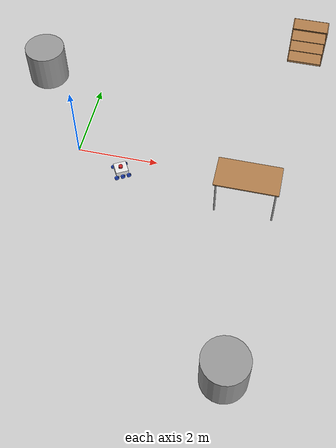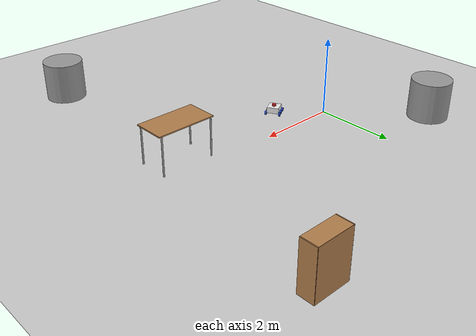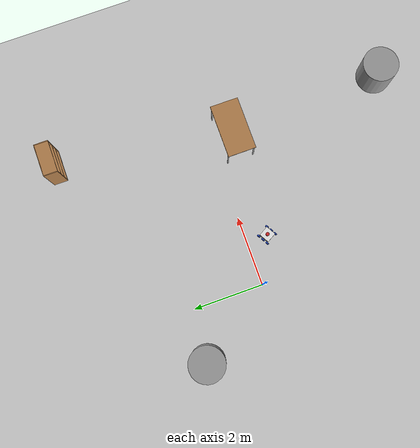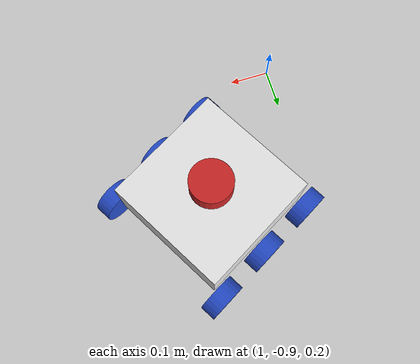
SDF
<sdf version="1.7">
 <world name="default">
  <light name="sun" type="directional">
   <pose>0 0 10 0 -0 0</pose>
   <diffuse>0.8 0.8 0.8 1</diffuse>
   <specular>0.2 0.2 0.2 1</specular>
   <attenuation>
    <range>1000</range>
    <constant>0.9</constant>
    <linear>0.01</linear>
    <quadratic>0.001</quadratic>
   </attenuation>
   <direction>-0.5 0.1 -0.9</direction>
   <spot><inner_angle>0</inner_angle><outer_angle>0</outer_angle><falloff>0</falloff></spot>
  </light>
  <model name="ground_plane">
   <static>1</static>
   <link name="link">
    <collision name="collision">
     <geometry><plane><normal>0 0 1</normal><size>100 100</size></plane></geometry>
     <surface>
      <contact><collide_bitmask>65535</collide_bitmask></contact>
      <friction><ode><mu>100</mu><mu2>50</mu2></ode></friction>
     </surface>
    </collision>
    <visual name="visual">
     <cast_shadows>0</cast_shadows>
     <geometry><plane><normal>0 0 1</normal><size>100 100</size></plane></geometry>
     <material>
      <script><uri>file://media/materials/scripts/gazebo.material</uri><name>Gazebo/Grey</name></script>
     </material>
    </visual>
   </link>
  </model>
  <gravity>0 0 -9.8</gravity>
  <magnetic_field>6e-06 2.3e-05 -4.2e-05</magnetic_field>
  <atmosphere type="adiabatic"/>
  <physics type="ode">
   <max_step_size>0.001</max_step_size>
   <real_time_factor>1</real_time_factor>
   <real_time_update_rate>1000</real_time_update_rate>
  </physics>
  <scene><ambient>0.4 0.4 0.4 1</ambient><background>0.7 0.7 0.7 1</background><shadows>1</shadows></scene>
  <audio><device>default</device></audio>
  <spherical_coordinates>
   <surface_model>EARTH_WGS84</surface_model>
   <latitude_deg>0</latitude_deg>
   <longitude_deg>0</longitude_deg>
   <elevation>0</elevation>
   <heading_deg>0</heading_deg>
  </spherical_coordinates>
  <model name="willy">
   <link name="base_footprint">
    <inertial>
     <pose>0 0 0.103571 0 -0 0</pose>
     <mass>0.7</mass>
     <inertia>
      <ixx>0.00628274</ixx>
      <ixy>0</ixy>
      <ixz>0</ixz>
      <iyy>0.00628274</iyy>
      <iyz>0</iyz>
      <izz>0.00775</izz>
     </inertia>
    </inertial>
    <collision name="base_footprint_fixed_joint_lump__chassis_collision">
     <pose>0 0 0.075 0 -0 0</pose>
     <geometry><box><size>0.3 0.3 0.15</size></box></geometry>
    </collision>
    <collision name="base_footprint_fixed_joint_lump__laser_frame_collision_1">
     <pose>0 0 0.175 0 -0 0</pose>
     <geometry><cylinder><length>0.05</length><radius>0.05</radius></cylinder></geometry>
    </collision>
    <visual name="base_footprint_fixed_joint_lump__chassis_visual">
     <pose>0 0 0.075 0 -0 0</pose>
     <geometry><box><size>0.3 0.3 0.15</size></box></geometry>
     <material>
      <script><name>Gazebo/White</name><uri>file://media/materials/scripts/gazebo.material</uri></script>
     </material>
    </visual>
    <visual name="base_footprint_fixed_joint_lump__laser_frame_visual_1">
     <pose>0 0 0.175 0 -0 0</pose>
     <geometry><cylinder><length>0.05</length><radius>0.05</radius></cylinder></geometry>
     <material>
      <script><name>Gazebo/Red</name><uri>file://media/materials/scripts/gazebo.material</uri></script>
     </material>
    </visual>
    <sensor name="laser" type="ray">
     <visualize>1</visualize>
     <update_rate>10</update_rate>
     <ray>
      <scan>
       <horizontal>
        <samples>360</samples>
        <min_angle>-3.14</min_angle>
        <max_angle>3.14</max_angle>
        <resolution>1</resolution>
       </horizontal>
       <vertical><samples>1</samples><min_angle>0</min_angle><max_angle>0</max_angle></vertical>
      </scan>
      <range><min>0.3</min><max>12</max></range>
     </ray>
     <plugin name="laser_controller" filename="libgazebo_ros_ray_sensor.so">
      <ros><argument>~/out:=scan</argument></ros>
      <output_type>sensor_msgs/LaserScan</output_type>
      <frame_name>laser_frame</frame_name>
     </plugin>
     <pose>0 0 0.175 0 -0 0</pose>
    </sensor>
   </link>
   <joint name="fl_wheel_joint" type="revolute">
    <pose relative_to="base_footprint">0.15 0.175 0 -1.5708 0 0</pose>
    <parent>base_footprint</parent>
    <child>fl_wheel</child>
    <axis>
     <xyz>0 0 1</xyz>
     <limit><lower>-1e+16</lower><upper>1e+16</upper></limit>
     <dynamics><spring_reference>0</spring_reference><spring_stiffness>0</spring_stiffness></dynamics>
    </axis>
   </joint>
   <link name="fl_wheel">
    <pose relative_to="fl_wheel_joint">0 0 0 0 -0 0</pose>
    <inertial>
     <mass>0.1</mass>
     <inertia>
      <ixx>7.58333e-05</ixx>
      <ixy>0</ixy>
      <ixz>0</ixz>
      <iyy>7.58333e-05</iyy>
      <iyz>0</iyz>
      <izz>0.000125</izz>
     </inertia>
    </inertial>
    <collision name="fl_wheel_collision">
     <geometry><cylinder><length>0.04</length><radius>0.05</radius></cylinder></geometry>
    </collision>
    <visual name="fl_wheel_visual">
     <geometry><cylinder><length>0.04</length><radius>0.05</radius></cylinder></geometry>
     <material>
      <script><name>Gazebo/Blue</name><uri>file://media/materials/scripts/gazebo.material</uri></script>
     </material>
    </visual>
   </link>
   <joint name="fr_wheel_joint" type="revolute">
    <pose relative_to="base_footprint">0.15 -0.175 0 -1.5708 0 0</pose>
    <parent>base_footprint</parent>
    <child>fr_wheel</child>
    <axis>
     <xyz>0 0 1</xyz>
     <limit><lower>-1e+16</lower><upper>1e+16</upper></limit>
     <dynamics><spring_reference>0</spring_reference><spring_stiffness>0</spring_stiffness></dynamics>
    </axis>
   </joint>
   <link name="fr_wheel">
    <pose relative_to="fr_wheel_joint">0 0 0 0 -0 0</pose>
    <inertial>
     <mass>0.1</mass>
     <inertia>
      <ixx>7.58333e-05</ixx>
      <ixy>0</ixy>
      <ixz>0</ixz>
      <iyy>7.58333e-05</iyy>
      <iyz>0</iyz>
      <izz>0.000125</izz>
     </inertia>
    </inertial>
    <collision name="fr_wheel_collision">
     <geometry><cylinder><length>0.04</length><radius>0.05</radius></cylinder></geometry>
    </collision>
    <visual name="fr_wheel_visual">
     <geometry><cylinder><length>0.04</length><radius>0.05</radius></cylinder></geometry>
     <material>
      <script><name>Gazebo/Blue</name><uri>file://media/materials/scripts/gazebo.material</uri></script>
     </material>
    </visual>
   </link>
   <joint name="ml_wheel_joint" type="revolute">
    <pose relative_to="base_footprint">0 0.175 0 -1.5708 0 0</pose>
    <parent>base_footprint</parent>
    <child>ml_wheel</child>
    <axis>
     <xyz>0 0 1</xyz>
     <limit><lower>-1e+16</lower><upper>1e+16</upper></limit>
     <dynamics><spring_reference>0</spring_reference><spring_stiffness>0</spring_stiffness></dynamics>
    </axis>
   </joint>
   <link name="ml_wheel">
    <pose relative_to="ml_wheel_joint">0 0 0 0 -0 0</pose>
    <inertial>
     <mass>0.1</mass>
     <inertia>
      <ixx>7.58333e-05</ixx>
      <ixy>0</ixy>
      <ixz>0</ixz>
      <iyy>7.58333e-05</iyy>
      <iyz>0</iyz>
      <izz>0.000125</izz>
     </inertia>
    </inertial>
    <collision name="ml_wheel_collision">
     <geometry><cylinder><length>0.04</length><radius>0.05</radius></cylinder></geometry>
    </collision>
    <visual name="ml_wheel_visual">
     <geometry><cylinder><length>0.04</length><radius>0.05</radius></cylinder></geometry>
     <material>
      <script><name>Gazebo/Blue</name><uri>file://media/materials/scripts/gazebo.material</uri></script>
     </material>
    </visual>
   </link>
   <joint name="mr_wheel_joint" type="revolute">
    <pose relative_to="base_footprint">0 -0.175 0 -1.5708 0 0</pose>
    <parent>base_footprint</parent>
    <child>mr_wheel</child>
    <axis>
     <xyz>0 0 1</xyz>
     <limit><lower>-1e+16</lower><upper>1e+16</upper></limit>
     <dynamics><spring_reference>0</spring_reference><spring_stiffness>0</spring_stiffness></dynamics>
    </axis>
   </joint>
   <link name="mr_wheel">
    <pose relative_to="mr_wheel_joint">0 0 0 0 -0 0</pose>
    <inertial>
     <mass>0.1</mass>
     <inertia>
      <ixx>7.58333e-05</ixx>
      <ixy>0</ixy>
      <ixz>0</ixz>
      <iyy>7.58333e-05</iyy>
      <iyz>0</iyz>
      <izz>0.000125</izz>
     </inertia>
    </inertial>
    <collision name="mr_wheel_collision">
     <geometry><cylinder><length>0.04</length><radius>0.05</radius></cylinder></geometry>
    </collision>
    <visual name="mr_wheel_visual">
     <geometry><cylinder><length>0.04</length><radius>0.05</radius></cylinder></geometry>
     <material>
      <script><name>Gazebo/Blue</name><uri>file://media/materials/scripts/gazebo.material</uri></script>
     </material>
    </visual>
   </link>
   <joint name="rl_wheel_joint" type="revolute">
    <pose relative_to="base_footprint">-0.15 0.175 0 -1.5708 0 0</pose>
    <parent>base_footprint</parent>
    <child>rl_wheel</child>
    <axis>
     <xyz>0 0 1</xyz>
     <limit><lower>-1e+16</lower><upper>1e+16</upper></limit>
     <dynamics><spring_reference>0</spring_reference><spring_stiffness>0</spring_stiffness></dynamics>
    </axis>
   </joint>
   <link name="rl_wheel">
    <pose relative_to="rl_wheel_joint">0 0 0 0 -0 0</pose>
    <inertial>
     <mass>0.1</mass>
     <inertia>
      <ixx>7.58333e-05</ixx>
      <ixy>0</ixy>
      <ixz>0</ixz>
      <iyy>7.58333e-05</iyy>
      <iyz>0</iyz>
      <izz>0.000125</izz>
     </inertia>
    </inertial>
    <collision name="rl_wheel_collision">
     <geometry><cylinder><length>0.04</length><radius>0.05</radius></cylinder></geometry>
    </collision>
    <visual name="rl_wheel_visual">
     <geometry><cylinder><length>0.04</length><radius>0.05</radius></cylinder></geometry>
     <material>
      <script><name>Gazebo/Blue</name><uri>file://media/materials/scripts/gazebo.material</uri></script>
     </material>
    </visual>
   </link>
   <joint name="rr_wheel_joint" type="revolute">
    <pose relative_to="base_footprint">-0.15 -0.175 0 -1.5708 0 0</pose>
    <parent>base_footprint</parent>
    <child>rr_wheel</child>
    <axis>
     <xyz>0 0 1</xyz>
     <limit><lower>-1e+16</lower><upper>1e+16</upper></limit>
     <dynamics><spring_reference>0</spring_reference><spring_stiffness>0</spring_stiffness></dynamics>
    </axis>
   </joint>
   <link name="rr_wheel">
    <pose relative_to="rr_wheel_joint">0 0 0 0 -0 0</pose>
    <inertial>
     <mass>0.1</mass>
     <inertia>
      <ixx>7.58333e-05</ixx>
      <ixy>0</ixy>
      <ixz>0</ixz>
      <iyy>7.58333e-05</iyy>
      <iyz>0</iyz>
      <izz>0.000125</izz>
     </inertia>
    </inertial>
    <collision name="rr_wheel_collision">
     <geometry><cylinder><length>0.04</length><radius>0.05</radius></cylinder></geometry>
    </collision>
    <visual name="rr_wheel_visual">
     <geometry><cylinder><length>0.04</length><radius>0.05</radius></cylinder></geometry>
     <material>
      <script><name>Gazebo/Blue</name><uri>file://media/materials/scripts/gazebo.material</uri></script>
     </material>
    </visual>
   </link>
   <static>0</static>
   <plugin name="object_controller" filename="libgazebo_ros_planar_move.so">
    <commandTopic>cmd_vel</commandTopic>
    <odometryTopic>odom</odometryTopic>
    <odometryFrame>odom</odometryFrame>
    <odometryRate>20.0</odometryRate>
    <robotBaseFrame>base_link</robotBaseFrame>
   </plugin>
   <pose>1.25586 -0.585694 0.2398 0 -0 0.516947</pose>
  </model>
  <model name="unit_cylinder_1">
   <pose>-1.45427 2.13684 0.6898 0 0 -0.002017</pose>
   <link name="link">
    <inertial>
     <mass>1</mass>
     <inertia><ixx>0.145833</ixx><ixy>0</ixy><ixz>0</ixz><iyy>0.145833</iyy><iyz>0</iyz><izz>0.125</izz></inertia>
    </inertial>
    <collision name="collision">
     <geometry><cylinder><radius>0.5</radius><length>1</length></cylinder></geometry>
    </collision>
    <visual name="visual">
     <geometry><cylinder><radius>0.5</radius><length>1</length></cylinder></geometry>
     <material>
      <script><name>Gazebo/Grey</name><uri>file://media/materials/scripts/gazebo.material</uri></script>
     </material>
    </visual>
   </link>
  </model>
  <model name="unit_cylinder_2">
   <pose>4.56569 -5.09703 0.6898 0 0 -3.2e-05</pose>
   <link name="link">
    <inertial>
     <mass>1</mass>
     <inertia><ixx>0.145833</ixx><ixy>0</ixy><ixz>0</ixz><iyy>0.145833</iyy><iyz>0</iyz><izz>0.125</izz></inertia>
    </inertial>
    <collision name="collision">
     <geometry><cylinder><radius>0.5</radius><length>1</length></cylinder></geometry>
    </collision>
    <visual name="visual">
     <geometry><cylinder><radius>0.5</radius><length>1</length></cylinder></geometry>
     <material>
      <script><name>Gazebo/Grey</name><uri>file://media/materials/scripts/gazebo.material</uri></script>
     </material>
    </visual>
   </link>
  </model>
  <model name="bookshelf">
   <static>1</static>
   <link name="link">
    <inertial><mass>1</mass></inertial>
    <collision name="back">
     <pose>0 0.005 0.6 0 -0 0</pose>
     <geometry><box><size>0.9 0.01 1.2</size></box></geometry>
    </collision>
    <visual name="visual1">
     <pose>0 0.005 0.6 0 -0 0</pose>
     <geometry><box><size>0.9 0.01 1.2</size></box></geometry>
     <material>
      <script><uri>file://media/materials/scripts/gazebo.material</uri><name>Gazebo/Wood</name></script>
     </material>
    </visual>
    <collision name="left_side">
     <pose>0.45 -0.195 0.6 0 -0 0</pose>
     <geometry><box><size>0.02 0.4 1.2</size></box></geometry>
    </collision>
    <visual name="visual2">
     <pose>0.45 -0.195 0.6 0 -0 0</pose>
     <geometry><box><size>0.02 0.4 1.2</size></box></geometry>
     <material>
      <script><uri>file://media/materials/scripts/gazebo.material</uri><name>Gazebo/Wood</name></script>
     </material>
    </visual>
    <collision name="right_side">
     <pose>-0.45 -0.195 0.6 0 -0 0</pose>
     <geometry><box><size>0.02 0.4 1.2</size></box></geometry>
    </collision>
    <visual name="visual3">
     <pose>-0.45 -0.195 0.6 0 -0 0</pose>
     <geometry><box><size>0.02 0.4 1.2</size></box></geometry>
     <material>
      <script><uri>file://media/materials/scripts/gazebo.material</uri><name>Gazebo/Wood</name></script>
     </material>
    </visual>
    <collision name="bottom">
     <pose>0 -0.195 0.03 0 -0 0</pose>
     <geometry><box><size>0.88 0.4 0.06</size></box></geometry>
    </collision>
    <visual name="visual4">
     <pose>0 -0.195 0.03 0 -0 0</pose>
     <geometry><box><size>0.88 0.4 0.06</size></box></geometry>
     <material>
      <script><uri>file://media/materials/scripts/gazebo.material</uri><name>Gazebo/Wood</name></script>
     </material>
    </visual>
    <collision name="top">
     <pose>0 -0.195 1.19 0 -0 0</pose>
     <geometry><box><size>0.88 0.4 0.02</size></box></geometry>
    </collision>
    <visual name="visual5">
     <pose>0 -0.195 1.19 0 -0 0</pose>
     <geometry><box><size>0.88 0.4 0.02</size></box></geometry>
     <material>
      <script><uri>file://media/materials/scripts/gazebo.material</uri><name>Gazebo/Wood</name></script>
     </material>
    </visual>
    <collision name="low_shelf">
     <pose>0 -0.195 0.43 0 -0 0</pose>
     <geometry><box><size>0.88 0.4 0.02</size></box></geometry>
    </collision>
    <visual name="visual6">
     <pose>0 -0.195 0.43 0 -0 0</pose>
     <geometry><box><size>0.88 0.4 0.02</size></box></geometry>
     <material>
      <script><uri>file://media/materials/scripts/gazebo.material</uri><name>Gazebo/Wood</name></script>
     </material>
    </visual>
    <collision name="high_shelf">
     <pose>0 -0.195 0.8 0 -0 0</pose>
     <geometry><box><size>0.88 0.4 0.02</size></box></geometry>
    </collision>
    <visual name="visual7">
     <pose>0 -0.195 0.8 0 -0 0</pose>
     <geometry><box><size>0.88 0.4 0.02</size></box></geometry>
     <material>
      <script><uri>file://media/materials/scripts/gazebo.material</uri><name>Gazebo/Wood</name></script>
     </material>
    </visual>
   </link>
   <pose>5.13912 4.60937 0 0 -0 0</pose>
  </model>
  <model name="table">
   <static>1</static>
   <link name="link">
    <collision name="surface">
     <pose>0 0 1 0 -0 0</pose>
     <geometry><box><size>1.5 0.8 0.03</size></box></geometry>
     <surface><friction><ode><mu>0.6</mu><mu2>0.6</mu2></ode></friction></surface>
    </collision>
    <visual name="visual1">
     <pose>0 0 1 0 -0 0</pose>
     <geometry><box><size>1.5 0.8 0.03</size></box></geometry>
     <material>
      <script><uri>file://media/materials/scripts/gazebo.material</uri><name>Gazebo/Wood</name></script>
     </material>
    </visual>
    <collision name="front_left_leg">
     <pose>0.68 0.38 0.5 0 -0 0</pose>
     <geometry><cylinder><radius>0.02</radius><length>1</length></cylinder></geometry>
    </collision>
    <visual name="front_left_leg">
     <pose>0.68 0.38 0.5 0 -0 0</pose>
     <geometry><cylinder><radius>0.02</radius><length>1</length></cylinder></geometry>
     <material>
      <script><uri>file://media/materials/scripts/gazebo.material</uri><name>Gazebo/Grey</name></script>
     </material>
    </visual>
    <collision name="front_right_leg">
     <pose>0.68 -0.38 0.5 0 -0 0</pose>
     <geometry><cylinder><radius>0.02</radius><length>1</length></cylinder></geometry>
    </collision>
    <visual name="front_right_leg">
     <pose>0.68 -0.38 0.5 0 -0 0</pose>
     <geometry><cylinder><radius>0.02</radius><length>1</length></cylinder></geometry>
     <material>
      <script><uri>file://media/materials/scripts/gazebo.material</uri><name>Gazebo/Grey</name></script>
     </material>
    </visual>
    <collision name="back_right_leg">
     <pose>-0.68 -0.38 0.5 0 -0 0</pose>
     <geometry><cylinder><radius>0.02</radius><length>1</length></cylinder></geometry>
    </collision>
    <visual name="back_right_leg">
     <pose>-0.68 -0.38 0.5 0 -0 0</pose>
     <geometry><cylinder><radius>0.02</radius><length>1</length></cylinder></geometry>
     <material>
      <script><uri>file://media/materials/scripts/gazebo.material</uri><name>Gazebo/Grey</name></script>
     </material>
    </visual>
    <collision name="back_left_leg">
     <pose>-0.68 0.38 0.5 0 -0 0</pose>
     <geometry><cylinder><radius>0.02</radius><length>1</length></cylinder></geometry>
    </collision>
    <visual name="back_left_leg">
     <pose>-0.68 0.38 0.5 0 -0 0</pose>
     <geometry><cylinder><radius>0.02</radius><length>1</length></cylinder></geometry>
     <material>
      <script><uri>file://media/materials/scripts/gazebo.material</uri><name>Gazebo/Grey</name></script>
     </material>
    </visual>
   </link>
   <pose>4.29875 -0.657773 0 0 -0 0</pose>
  </model>
 </world>
</sdf>
